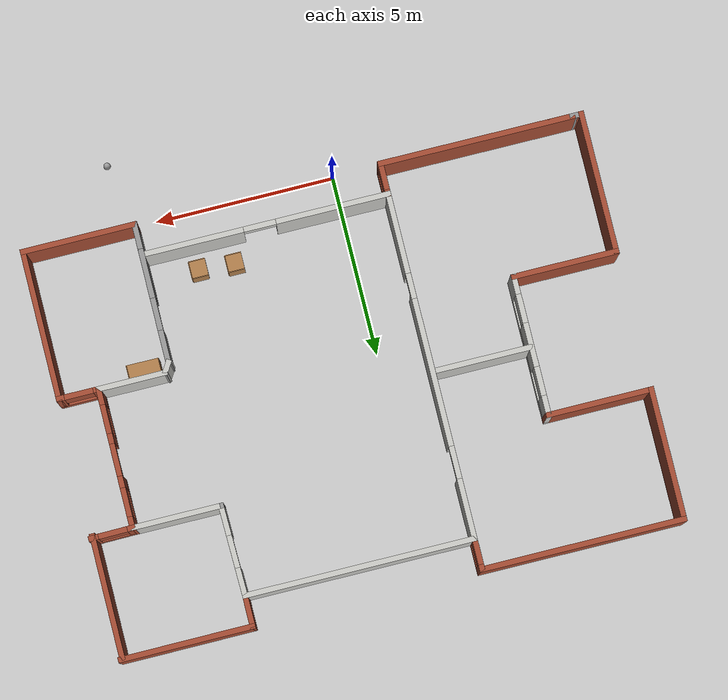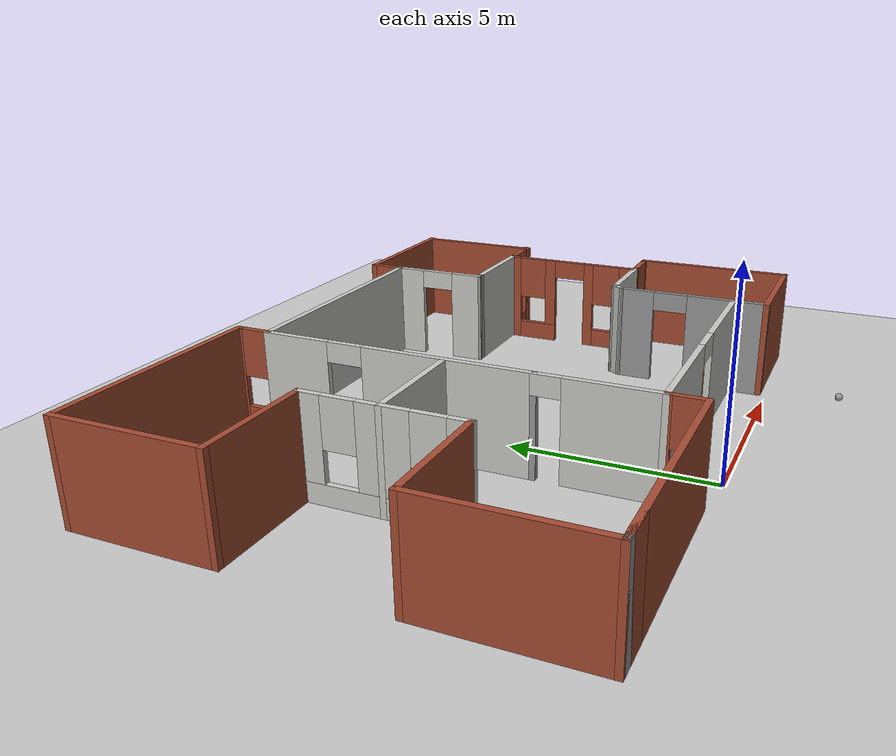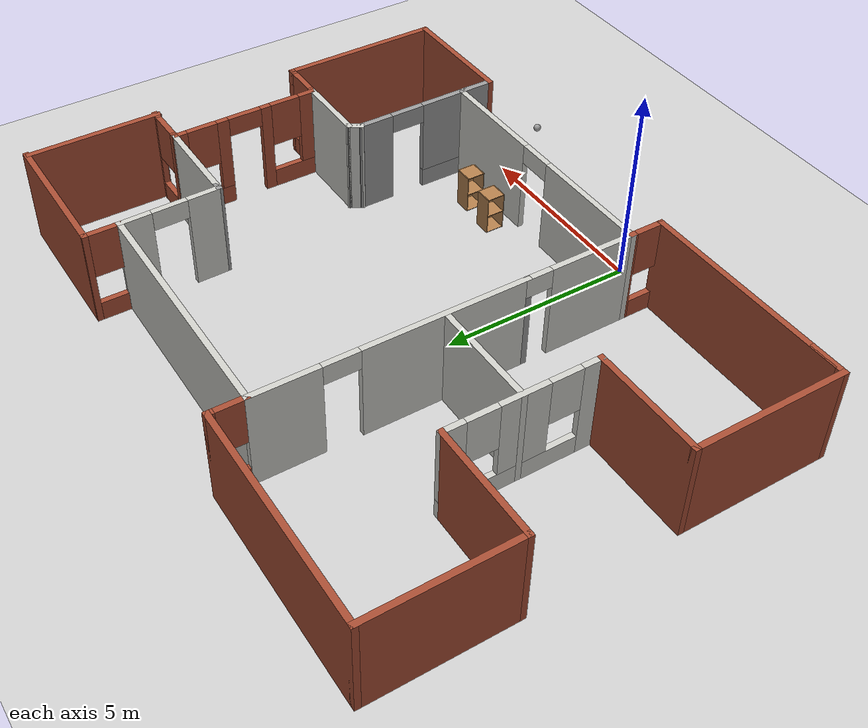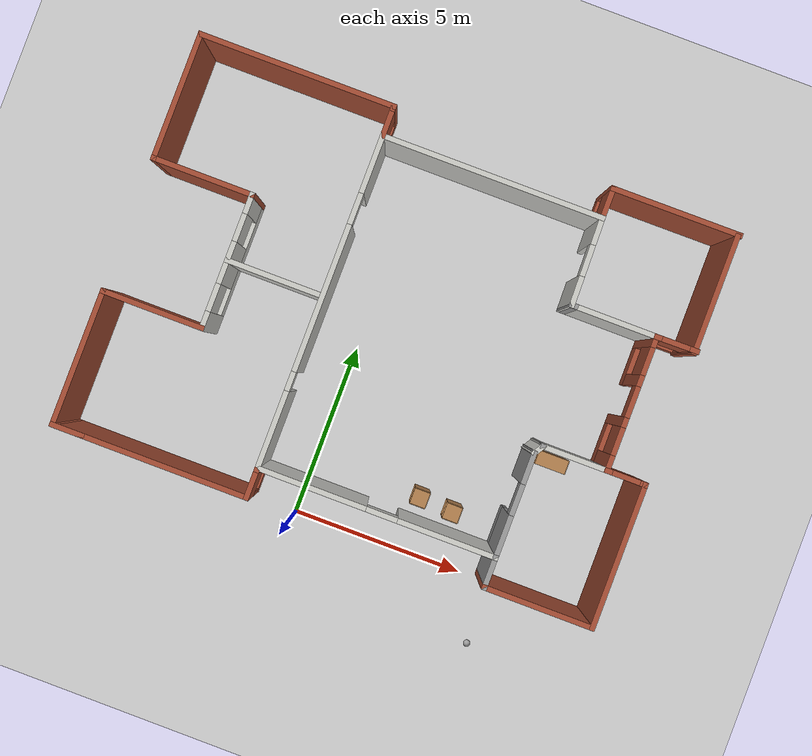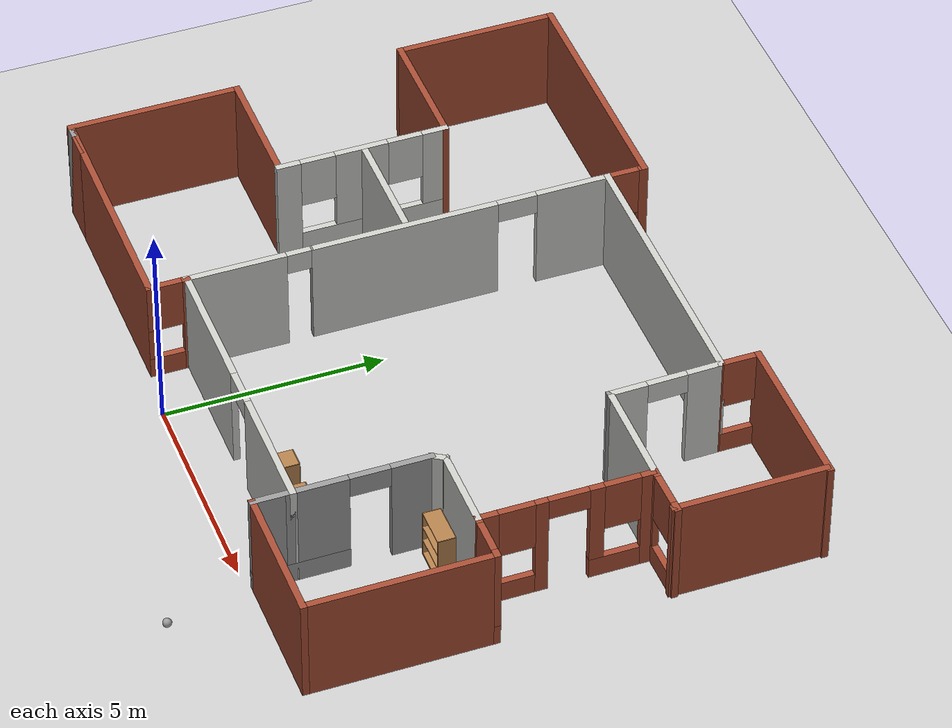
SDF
<sdf version="1.6">
 <world name="default">
  <model name="ground_plane">
   <static>1</static>
   <link name="link">
    <collision name="collision">
     <geometry><plane><normal>0 0 1</normal><size>100 100</size></plane></geometry>
     <surface><friction><ode><mu>100</mu><mu2>50</mu2></ode></friction></surface>
    </collision>
    <visual name="visual">
     <cast_shadows>0</cast_shadows>
     <geometry><plane><normal>0 0 1</normal><size>100 100</size></plane></geometry>
     <material>
      <script><uri>file://media/materials/scripts/gazebo.material</uri><name>Gazebo/Grey</name></script>
     </material>
    </visual>
   </link>
  </model>
  <model name="building_project3">
   <pose>0.90611 5.85511 0 0 -0 0</pose>
   <link name="Wall_0">
    <collision name="Wall_0_Collision">
     <geometry><box><size>4 0.15 2.5</size></box></geometry>
     <pose>0 0 1.25 0 -0 0</pose>
    </collision>
    <visual name="Wall_0_Visual">
     <pose>0 0 1.25 0 -0 0</pose>
     <geometry><box><size>4 0.15 2.5</size></box></geometry>
     <material>
      <script><uri>file://media/materials/scripts/gazebo.material</uri><name>Gazebo/Bricks</name></script>
      <ambient>1 1 1 1</ambient>
     </material>
    </visual>
    <pose>-7.79821 -3.73251 0 0 -0 1.5708</pose>
   </link>
   <link name="Wall_1">
    <collision name="Wall_1_Collision">
     <geometry><box><size>3 0.15 2.5</size></box></geometry>
     <pose>0 0 1.25 0 -0 0</pose>
    </collision>
    <visual name="Wall_1_Visual">
     <pose>0 0 1.25 0 -0 0</pose>
     <geometry><box><size>3 0.15 2.5</size></box></geometry>
     <material>
      <script><uri>file://media/materials/scripts/gazebo.material</uri><name>Gazebo/Bricks</name></script>
      <ambient>1 1 1 1</ambient>
     </material>
    </visual>
    <pose>-6.37322 -1.80751 0 0 -0 0</pose>
   </link>
   <link name="Wall_10">
    <collision name="Wall_10_Collision">
     <geometry><box><size>3.5 0.15 2.5</size></box></geometry>
     <pose>0 0 1.25 0 -0 0</pose>
    </collision>
    <visual name="Wall_10_Visual">
     <pose>0 0 1.25 0 -0 0</pose>
     <geometry><box><size>3.5 0.15 2.5</size></box></geometry>
     <material>
      <script><uri>file://media/materials/scripts/gazebo.material</uri><name>Gazebo/Bricks</name></script>
      <ambient>1 1 1 1</ambient>
     </material>
    </visual>
    <pose>7.75073 3.93568 0 0 0 -1.5708</pose>
   </link>
   <link name="Wall_11">
    <pose>7.22452 2.29985 0 0 0 -3.12875</pose>
    <visual name="Wall_11_Visual_0">
     <pose>-0.512497 0 1.25 0 -0 0</pose>
     <geometry><box><size>0.270574 0.15 2.5</size></box></geometry>
     <material>
      <script><uri>file://media/materials/scripts/gazebo.material</uri><name>Gazebo/Bricks</name></script>
      <ambient>1 1 1 1</ambient>
     </material>
    </visual>
    <collision name="Wall_11_Collision_0">
     <geometry><box><size>0.270574 0.15 2.5</size></box></geometry>
     <pose>-0.512497 0 1.25 0 -0 0</pose>
    </collision>
    <visual name="Wall_11_Visual_1">
     <pose>0.135287 0 0.25 0 -0 0</pose>
     <geometry><box><size>1.02499 0.15 0.5</size></box></geometry>
     <material>
      <script><uri>file://media/materials/scripts/gazebo.material</uri><name>Gazebo/Bricks</name></script>
      <ambient>1 1 1 1</ambient>
     </material>
    </visual>
    <collision name="Wall_11_Collision_1">
     <geometry><box><size>1.02499 0.15 0.5</size></box></geometry>
     <pose>0.135287 0 0.25 0 -0 0</pose>
    </collision>
    <visual name="Wall_11_Visual_2">
     <pose>0.535287 0 1.5 0 -0 0</pose>
     <geometry><box><size>0.224994 0.15 2</size></box></geometry>
     <material>
      <script><uri>file://media/materials/scripts/gazebo.material</uri><name>Gazebo/Bricks</name></script>
      <ambient>1 1 1 1</ambient>
     </material>
    </visual>
    <collision name="Wall_11_Collision_2">
     <geometry><box><size>0.224994 0.15 2</size></box></geometry>
     <pose>0.535287 0 1.5 0 -0 0</pose>
    </collision>
    <visual name="Wall_11_Visual_3">
     <pose>0.02279 0 1.9 0 -0 0</pose>
     <geometry><box><size>0.8 0.15 1.2</size></box></geometry>
     <material>
      <script><uri>file://media/materials/scripts/gazebo.material</uri><name>Gazebo/Bricks</name></script>
      <ambient>1 1 1 1</ambient>
     </material>
    </visual>
    <collision name="Wall_11_Collision_3">
     <geometry><box><size>0.8 0.15 1.2</size></box></geometry>
     <pose>0.02279 0 1.9 0 -0 0</pose>
    </collision>
   </link>
   <link name="Wall_12">
    <pose>6.65179 0.367493 0 0 0 -1.5708</pose>
    <visual name="Wall_12_Visual_0">
     <pose>-1.80898 0 1.25 0 -0 0</pose>
     <geometry><box><size>0.382047 0.15 2.5</size></box></geometry>
     <material>
      <script><uri>file://media/materials/scripts/gazebo.material</uri><name>Gazebo/Bricks</name></script>
      <ambient>1 1 1 1</ambient>
     </material>
    </visual>
    <collision name="Wall_12_Collision_0">
     <geometry><box><size>0.382047 0.15 2.5</size></box></geometry>
     <pose>-1.80898 0 1.25 0 -0 0</pose>
    </collision>
    <visual name="Wall_12_Visual_1">
     <pose>0.546637 0 1.25 0 -0 0</pose>
     <geometry><box><size>0.282756 0.15 2.5</size></box></geometry>
     <material>
      <script><uri>file://media/materials/scripts/gazebo.material</uri><name>Gazebo/Bricks</name></script>
      <ambient>1 1 1 1</ambient>
     </material>
    </visual>
    <collision name="Wall_12_Collision_1">
     <geometry><box><size>0.282756 0.15 2.5</size></box></geometry>
     <pose>0.546637 0 1.25 0 -0 0</pose>
    </collision>
    <visual name="Wall_12_Visual_2">
     <pose>-1.05635 0 0.25 0 -0 0</pose>
     <geometry><box><size>1.12321 0.15 0.5</size></box></geometry>
     <material>
      <script><uri>file://media/materials/scripts/gazebo.material</uri><name>Gazebo/Bricks</name></script>
      <ambient>1 1 1 1</ambient>
     </material>
    </visual>
    <collision name="Wall_12_Collision_2">
     <geometry><box><size>1.12321 0.15 0.5</size></box></geometry>
     <pose>-1.05635 0 0.25 0 -0 0</pose>
    </collision>
    <visual name="Wall_12_Visual_3">
     <pose>1.34401 0 0.25 0 -0 0</pose>
     <geometry><box><size>1.31198 0.15 0.5</size></box></geometry>
     <material>
      <script><uri>file://media/materials/scripts/gazebo.material</uri><name>Gazebo/Bricks</name></script>
      <ambient>1 1 1 1</ambient>
     </material>
    </visual>
    <collision name="Wall_12_Collision_3">
     <geometry><box><size>1.31198 0.15 0.5</size></box></geometry>
     <pose>1.34401 0 0.25 0 -0 0</pose>
    </collision>
    <visual name="Wall_12_Visual_4">
     <pose>-0.656347 0 1.5 0 -0 0</pose>
     <geometry><box><size>0.323212 0.15 2</size></box></geometry>
     <material>
      <script><uri>file://media/materials/scripts/gazebo.material</uri><name>Gazebo/Bricks</name></script>
      <ambient>1 1 1 1</ambient>
     </material>
    </visual>
    <collision name="Wall_12_Collision_4">
     <geometry><box><size>0.323212 0.15 2</size></box></geometry>
     <pose>-0.656347 0 1.5 0 -0 0</pose>
    </collision>
    <visual name="Wall_12_Visual_5">
     <pose>-0.656347 0 1.5 0 -0 0</pose>
     <geometry><box><size>0.323212 0.15 2</size></box></geometry>
     <material>
      <script><uri>file://media/materials/scripts/gazebo.material</uri><name>Gazebo/Bricks</name></script>
      <ambient>1 1 1 1</ambient>
     </material>
    </visual>
    <collision name="Wall_12_Collision_5">
     <geometry><box><size>0.323212 0.15 2</size></box></geometry>
     <pose>-0.656347 0 1.5 0 -0 0</pose>
    </collision>
    <visual name="Wall_12_Visual_6">
     <pose>1.74401 0 1.5 0 -0 0</pose>
     <geometry><box><size>0.511985 0.15 2</size></box></geometry>
     <material>
      <script><uri>file://media/materials/scripts/gazebo.material</uri><name>Gazebo/Bricks</name></script>
      <ambient>1 1 1 1</ambient>
     </material>
    </visual>
    <collision name="Wall_12_Collision_6">
     <geometry><box><size>0.511985 0.15 2</size></box></geometry>
     <pose>1.74401 0 1.5 0 -0 0</pose>
    </collision>
    <visual name="Wall_12_Visual_7">
     <pose>-1.21795 0 1.9 0 -0 0</pose>
     <geometry><box><size>0.8 0.15 1.2</size></box></geometry>
     <material>
      <script><uri>file://media/materials/scripts/gazebo.material</uri><name>Gazebo/Bricks</name></script>
      <ambient>1 1 1 1</ambient>
     </material>
    </visual>
    <collision name="Wall_12_Collision_7">
     <geometry><box><size>0.8 0.15 1.2</size></box></geometry>
     <pose>-1.21795 0 1.9 0 -0 0</pose>
    </collision>
    <visual name="Wall_12_Visual_8">
     <pose>1.08801 0 1.9 0 -0 0</pose>
     <geometry><box><size>0.8 0.15 1.2</size></box></geometry>
     <material>
      <script><uri>file://media/materials/scripts/gazebo.material</uri><name>Gazebo/Bricks</name></script>
      <ambient>1 1 1 1</ambient>
     </material>
    </visual>
    <collision name="Wall_12_Collision_8">
     <geometry><box><size>0.8 0.15 1.2</size></box></geometry>
     <pose>1.08801 0 1.9 0 -0 0</pose>
    </collision>
    <visual name="Wall_12_Visual_9">
     <pose>-0.044741 0 2.25 0 -0 0</pose>
     <geometry><box><size>0.9 0.15 0.5</size></box></geometry>
     <material>
      <script><uri>file://media/materials/scripts/gazebo.material</uri><name>Gazebo/Bricks</name></script>
      <ambient>1 1 1 1</ambient>
     </material>
    </visual>
    <collision name="Wall_12_Collision_9">
     <geometry><box><size>0.9 0.15 0.5</size></box></geometry>
     <pose>-0.044741 0 2.25 0 -0 0</pose>
    </collision>
    <visual name="Wall_12_Visual_10">
     <pose>-0.044741 0 2.25 0 -0 0</pose>
     <geometry><box><size>0.9 0.15 0.5</size></box></geometry>
     <material>
      <script><uri>file://media/materials/scripts/gazebo.material</uri><name>Gazebo/Bricks</name></script>
      <ambient>1 1 1 1</ambient>
     </material>
    </visual>
    <collision name="Wall_12_Collision_10">
     <geometry><box><size>0.9 0.15 0.5</size></box></geometry>
     <pose>-0.044741 0 2.25 0 -0 0</pose>
    </collision>
   </link>
   <link name="Wall_13">
    <pose>7.20179 -1.55751 0 0 -0 0</pose>
    <visual name="Wall_13_Visual_0">
     <pose>-0.511837 0 1.25 0 -0 0</pose>
     <geometry><box><size>0.226327 0.15 2.5</size></box></geometry>
     <material>
      <script><uri>file://media/materials/scripts/gazebo.material</uri><name>Gazebo/Bricks</name></script>
      <ambient>1 1 1 1</ambient>
     </material>
    </visual>
    <collision name="Wall_13_Collision_0">
     <geometry><box><size>0.226327 0.15 2.5</size></box></geometry>
     <pose>-0.511837 0 1.25 0 -0 0</pose>
    </collision>
    <visual name="Wall_13_Visual_1">
     <pose>0.113163 0 0.25 0 -0 0</pose>
     <geometry><box><size>1.02367 0.15 0.5</size></box></geometry>
     <material>
      <script><uri>file://media/materials/scripts/gazebo.material</uri><name>Gazebo/Bricks</name></script>
      <ambient>1 1 1 1</ambient>
     </material>
    </visual>
    <collision name="Wall_13_Collision_1">
     <geometry><box><size>1.02367 0.15 0.5</size></box></geometry>
     <pose>0.113163 0 0.25 0 -0 0</pose>
    </collision>
    <visual name="Wall_13_Visual_2">
     <pose>0.513163 0 1.5 0 -0 0</pose>
     <geometry><box><size>0.223673 0.15 2</size></box></geometry>
     <material>
      <script><uri>file://media/materials/scripts/gazebo.material</uri><name>Gazebo/Bricks</name></script>
      <ambient>1 1 1 1</ambient>
     </material>
    </visual>
    <collision name="Wall_13_Collision_2">
     <geometry><box><size>0.223673 0.15 2</size></box></geometry>
     <pose>0.513163 0 1.5 0 -0 0</pose>
    </collision>
    <visual name="Wall_13_Visual_3">
     <pose>0.001327 0 1.9 0 -0 0</pose>
     <geometry><box><size>0.8 0.15 1.2</size></box></geometry>
     <material>
      <script><uri>file://media/materials/scripts/gazebo.material</uri><name>Gazebo/Bricks</name></script>
      <ambient>1 1 1 1</ambient>
     </material>
    </visual>
    <collision name="Wall_13_Collision_3">
     <geometry><box><size>0.8 0.15 1.2</size></box></geometry>
     <pose>0.001327 0 1.9 0 -0 0</pose>
    </collision>
   </link>
   <link name="Wall_14">
    <collision name="Wall_14_Collision">
     <geometry><box><size>4.25 0.15 2.5</size></box></geometry>
     <pose>0 0 1.25 0 -0 0</pose>
    </collision>
    <visual name="Wall_14_Visual">
     <pose>0 0 1.25 0 -0 0</pose>
     <geometry><box><size>4.25 0.15 2.5</size></box></geometry>
     <material>
      <script><uri>file://media/materials/scripts/gazebo.material</uri><name>Gazebo/Bricks</name></script>
      <ambient>1 1 1 1</ambient>
     </material>
    </visual>
    <pose>7.75178 -3.60751 0 0 0 -1.5708</pose>
   </link>
   <link name="Wall_15">
    <collision name="Wall_15_Collision">
     <geometry><box><size>3.25 0.15 2.5</size></box></geometry>
     <pose>0 0 1.25 0 -0 0</pose>
    </collision>
    <visual name="Wall_15_Visual">
     <pose>0 0 1.25 0 -0 0</pose>
     <geometry><box><size>3.25 0.15 2.5</size></box></geometry>
     <material>
      <script><uri>file://media/materials/scripts/gazebo.material</uri><name>Gazebo/Bricks</name></script>
      <ambient>1 1 1 1</ambient>
     </material>
    </visual>
    <pose>6.20179 -5.65751 0 0 -0 3.14159</pose>
   </link>
   <link name="Wall_16">
    <collision name="Wall_16_Collision">
     <geometry><box><size>1 0.15 2.5</size></box></geometry>
     <pose>0 0 1.25 0 -0 0</pose>
    </collision>
    <visual name="Wall_16_Visual">
     <pose>0 0 1.25 0 -0 0</pose>
     <geometry><box><size>1 0.15 2.5</size></box></geometry>
     <material>
      <script><uri>file://media/materials/scripts/gazebo.material</uri><name>Gazebo/Grey</name></script>
      <ambient>1 1 1 1</ambient>
     </material>
    </visual>
    <pose>4.65179 -5.23251 0 0 -0 1.5708</pose>
   </link>
   <link name="Wall_17">
    <pose>1.22679 -4.80751 0 0 -0 3.14159</pose>
    <visual name="Wall_17_Visual_0">
     <pose>-2.05036 0 1.25 0 -0 0</pose>
     <geometry><box><size>2.89928 0.15 2.5</size></box></geometry>
     <material>
      <script><uri>file://media/materials/scripts/gazebo.material</uri><name>Gazebo/CeilingTiled</name></script>
      <ambient>1 1 1 1</ambient>
     </material>
    </visual>
    <collision name="Wall_17_Collision_0">
     <geometry><box><size>2.89928 0.15 2.5</size></box></geometry>
     <pose>-2.05036 0 1.25 0 -0 0</pose>
    </collision>
    <visual name="Wall_17_Visual_1">
     <pose>1.89964 0 1.25 0 -0 0</pose>
     <geometry><box><size>3.20072 0.15 2.5</size></box></geometry>
     <material>
      <script><uri>file://media/materials/scripts/gazebo.material</uri><name>Gazebo/CeilingTiled</name></script>
      <ambient>1 1 1 1</ambient>
     </material>
    </visual>
    <collision name="Wall_17_Collision_1">
     <geometry><box><size>3.20072 0.15 2.5</size></box></geometry>
     <pose>1.89964 0 1.25 0 -0 0</pose>
    </collision>
    <visual name="Wall_17_Visual_2">
     <pose>-0.150724 0 2.25 0 -0 0</pose>
     <geometry><box><size>0.9 0.15 0.5</size></box></geometry>
     <material>
      <script><uri>file://media/materials/scripts/gazebo.material</uri><name>Gazebo/CeilingTiled</name></script>
      <ambient>1 1 1 1</ambient>
     </material>
    </visual>
    <collision name="Wall_17_Collision_2">
     <geometry><box><size>0.9 0.15 0.5</size></box></geometry>
     <pose>-0.150724 0 2.25 0 -0 0</pose>
    </collision>
   </link>
   <link name="Wall_18">
    <pose>-2.19821 -5.23251 0 0 0 -1.5708</pose>
    <visual name="Wall_18_Visual_0">
     <pose>-0.400024 0 1.25 0 -0 0</pose>
     <geometry><box><size>0.199951 0.15 2.5</size></box></geometry>
     <material>
      <script><uri>file://media/materials/scripts/gazebo.material</uri><name>Gazebo/Bricks</name></script>
      <ambient>1 1 1 1</ambient>
     </material>
    </visual>
    <collision name="Wall_18_Collision_0">
     <geometry><box><size>0.199951 0.15 2.5</size></box></geometry>
     <pose>-0.400024 0 1.25 0 -0 0</pose>
    </collision>
    <visual name="Wall_18_Visual_1">
     <pose>0.099976 0 0.25 0 -0 0</pose>
     <geometry><box><size>0.800049 0.15 0.5</size></box></geometry>
     <material>
      <script><uri>file://media/materials/scripts/gazebo.material</uri><name>Gazebo/Bricks</name></script>
      <ambient>1 1 1 1</ambient>
     </material>
    </visual>
    <collision name="Wall_18_Collision_1">
     <geometry><box><size>0.800049 0.15 0.5</size></box></geometry>
     <pose>0.099976 0 0.25 0 -0 0</pose>
    </collision>
    <visual name="Wall_18_Visual_2">
     <pose>0.499976 0 1.5 0 -0 0</pose>
     <geometry><box><size>4.9e-05 0.15 2</size></box></geometry>
     <material>
      <script><uri>file://media/materials/scripts/gazebo.material</uri><name>Gazebo/Bricks</name></script>
      <ambient>1 1 1 1</ambient>
     </material>
    </visual>
    <collision name="Wall_18_Collision_2">
     <geometry><box><size>4.9e-05 0.15 2</size></box></geometry>
     <pose>0.499976 0 1.5 0 -0 0</pose>
    </collision>
    <visual name="Wall_18_Visual_3">
     <pose>0.099951 0 1.9 0 -0 0</pose>
     <geometry><box><size>0.8 0.15 1.2</size></box></geometry>
     <material>
      <script><uri>file://media/materials/scripts/gazebo.material</uri><name>Gazebo/Bricks</name></script>
      <ambient>1 1 1 1</ambient>
     </material>
    </visual>
    <collision name="Wall_18_Collision_3">
     <geometry><box><size>0.8 0.15 1.2</size></box></geometry>
     <pose>0.099951 0 1.9 0 -0 0</pose>
    </collision>
   </link>
   <link name="Wall_19">
    <collision name="Wall_19_Collision">
     <geometry><box><size>5.5 0.15 2.5</size></box></geometry>
     <pose>0 0 1.25 0 -0 0</pose>
    </collision>
    <visual name="Wall_19_Visual">
     <pose>0 0 1.25 0 -0 0</pose>
     <geometry><box><size>5.5 0.15 2.5</size></box></geometry>
     <material>
      <script><uri>file://media/materials/scripts/gazebo.material</uri><name>Gazebo/Bricks</name></script>
      <ambient>1 1 1 1</ambient>
     </material>
    </visual>
    <pose>-4.87322 -5.65751 0 0 -0 3.14159</pose>
   </link>
   <link name="Wall_2">
    <pose>-4.94822 0.117493 0 0 -0 1.5708</pose>
    <visual name="Wall_2_Visual_0">
     <pose>-1.72015 0 1.25 0 -0 0</pose>
     <geometry><box><size>0.559707 0.15 2.5</size></box></geometry>
     <material>
      <script><uri>file://media/materials/scripts/gazebo.material</uri><name>Gazebo/CeilingTiled</name></script>
      <ambient>1 1 1 1</ambient>
     </material>
    </visual>
    <collision name="Wall_2_Collision_0">
     <geometry><box><size>0.559707 0.15 2.5</size></box></geometry>
     <pose>-1.72015 0 1.25 0 -0 0</pose>
    </collision>
    <visual name="Wall_2_Visual_1">
     <pose>0.279853 0 0.25 0 -0 0</pose>
     <geometry><box><size>3.44029 0.15 0.5</size></box></geometry>
     <material>
      <script><uri>file://media/materials/scripts/gazebo.material</uri><name>Gazebo/CeilingTiled</name></script>
      <ambient>1 1 1 1</ambient>
     </material>
    </visual>
    <collision name="Wall_2_Collision_1">
     <geometry><box><size>3.44029 0.15 0.5</size></box></geometry>
     <pose>0.279853 0 0.25 0 -0 0</pose>
    </collision>
    <visual name="Wall_2_Visual_2">
     <pose>-0.028904 0 1.5 0 -0 0</pose>
     <geometry><box><size>1.22278 0.15 2</size></box></geometry>
     <material>
      <script><uri>file://media/materials/scripts/gazebo.material</uri><name>Gazebo/CeilingTiled</name></script>
      <ambient>1 1 1 1</ambient>
     </material>
    </visual>
    <collision name="Wall_2_Collision_2">
     <geometry><box><size>1.22278 0.15 2</size></box></geometry>
     <pose>-0.028904 0 1.5 0 -0 0</pose>
    </collision>
    <visual name="Wall_2_Visual_3">
     <pose>1.69124 0 1.5 0 -0 0</pose>
     <geometry><box><size>0.617514 0.15 2</size></box></geometry>
     <material>
      <script><uri>file://media/materials/scripts/gazebo.material</uri><name>Gazebo/CeilingTiled</name></script>
      <ambient>1 1 1 1</ambient>
     </material>
    </visual>
    <collision name="Wall_2_Collision_3">
     <geometry><box><size>0.617514 0.15 2</size></box></geometry>
     <pose>1.69124 0 1.5 0 -0 0</pose>
    </collision>
    <visual name="Wall_2_Visual_4">
     <pose>-1.04029 0 1.9 0 -0 0</pose>
     <geometry><box><size>0.8 0.15 1.2</size></box></geometry>
     <material>
      <script><uri>file://media/materials/scripts/gazebo.material</uri><name>Gazebo/CeilingTiled</name></script>
      <ambient>1 1 1 1</ambient>
     </material>
    </visual>
    <collision name="Wall_2_Collision_4">
     <geometry><box><size>0.8 0.15 1.2</size></box></geometry>
     <pose>-1.04029 0 1.9 0 -0 0</pose>
    </collision>
    <visual name="Wall_2_Visual_5">
     <pose>0.982486 0 1.9 0 -0 0</pose>
     <geometry><box><size>0.8 0.15 1.2</size></box></geometry>
     <material>
      <script><uri>file://media/materials/scripts/gazebo.material</uri><name>Gazebo/CeilingTiled</name></script>
      <ambient>1 1 1 1</ambient>
     </material>
    </visual>
    <collision name="Wall_2_Collision_5">
     <geometry><box><size>0.8 0.15 1.2</size></box></geometry>
     <pose>0.982486 0 1.9 0 -0 0</pose>
    </collision>
   </link>
   <link name="Wall_20">
    <collision name="Wall_20_Collision">
     <geometry><box><size>0.4 0.15 2.5</size></box></geometry>
     <pose>0 0 1.25 0 -0 0</pose>
    </collision>
    <visual name="Wall_20_Visual">
     <pose>0 0 1.25 0 -0 0</pose>
     <geometry><box><size>0.4 0.15 2.5</size></box></geometry>
     <material>
      <script><uri>file://media/materials/scripts/gazebo.material</uri><name>Gazebo/Grey</name></script>
      <ambient>1 1 1 1</ambient>
     </material>
    </visual>
    <pose>-7.67321 -5.65751 0 0 0 -3.14159</pose>
   </link>
   <link name="Wall_21">
    <collision name="Wall_21_Collision">
     <geometry><box><size>1 0.15 2.5</size></box></geometry>
     <pose>0 0 1.25 0 -0 0</pose>
    </collision>
    <visual name="Wall_21_Visual">
     <pose>0 0 1.25 0 -0 0</pose>
     <geometry><box><size>1 0.15 2.5</size></box></geometry>
     <material>
      <script><uri>file://media/materials/scripts/gazebo.material</uri><name>Gazebo/Bricks</name></script>
      <ambient>1 1 1 1</ambient>
     </material>
    </visual>
    <pose>-7.37322 -5.65751 0 0 -0 0</pose>
   </link>
   <link name="Wall_23">
    <pose>-2.19821 -3.38251 0 0 -0 1.5708</pose>
    <visual name="Wall_23_Visual_0">
     <pose>-0.35198 0 1.25 0 -0 0</pose>
     <geometry><box><size>2.29604 0.15 2.5</size></box></geometry>
     <material>
      <script><uri>file://media/materials/scripts/gazebo.material</uri><name>Gazebo/CeilingTiled</name></script>
      <ambient>1 1 1 1</ambient>
     </material>
    </visual>
    <collision name="Wall_23_Collision_0">
     <geometry><box><size>2.29604 0.15 2.5</size></box></geometry>
     <pose>-0.35198 0 1.25 0 -0 0</pose>
    </collision>
    <visual name="Wall_23_Visual_1">
     <pose>1.14802 0 2.25 0 -0 0</pose>
     <geometry><box><size>0.70396 0.15 0.5</size></box></geometry>
     <material>
      <script><uri>file://media/materials/scripts/gazebo.material</uri><name>Gazebo/CeilingTiled</name></script>
      <ambient>1 1 1 1</ambient>
     </material>
    </visual>
    <collision name="Wall_23_Collision_1">
     <geometry><box><size>0.70396 0.15 0.5</size></box></geometry>
     <pose>1.14802 0 2.25 0 -0 0</pose>
    </collision>
   </link>
   <link name="Wall_24">
    <collision name="Wall_24_Collision">
     <geometry><box><size>0.15 0.15 2.5</size></box></geometry>
     <pose>0 0 1.25 0 -0 0</pose>
    </collision>
    <visual name="Wall_24_Visual">
     <pose>0 0 1.25 0 -0 0</pose>
     <geometry><box><size>0.15 0.15 2.5</size></box></geometry>
     <material>
      <script><uri>file://media/materials/scripts/gazebo.material</uri><name>Gazebo/Grey</name></script>
      <ambient>1 1 1 1</ambient>
     </material>
    </visual>
    <pose>-2.19821 -1.95751 0 0 -0 0</pose>
   </link>
   <link name="Wall_25">
    <pose>-2.19821 1.41749 0 0 -0 1.5708</pose>
    <visual name="Wall_25_Visual_0">
     <pose>-1.31987 0 1.25 0 -0 0</pose>
     <geometry><box><size>4.26025 0.15 2.5</size></box></geometry>
     <material>
      <script><uri>file://media/materials/scripts/gazebo.material</uri><name>Gazebo/CeilingTiled</name></script>
      <ambient>1 1 1 1</ambient>
     </material>
    </visual>
    <collision name="Wall_25_Collision_0">
     <geometry><box><size>4.26025 0.15 2.5</size></box></geometry>
     <pose>-1.31987 0 1.25 0 -0 0</pose>
    </collision>
    <visual name="Wall_25_Visual_1">
     <pose>2.58013 0 1.25 0 -0 0</pose>
     <geometry><box><size>1.73975 0.15 2.5</size></box></geometry>
     <material>
      <script><uri>file://media/materials/scripts/gazebo.material</uri><name>Gazebo/CeilingTiled</name></script>
      <ambient>1 1 1 1</ambient>
     </material>
    </visual>
    <collision name="Wall_25_Collision_1">
     <geometry><box><size>1.73975 0.15 2.5</size></box></geometry>
     <pose>2.58013 0 1.25 0 -0 0</pose>
    </collision>
    <visual name="Wall_25_Visual_2">
     <pose>1.26025 0 2.25 0 -0 0</pose>
     <geometry><box><size>0.9 0.15 0.5</size></box></geometry>
     <material>
      <script><uri>file://media/materials/scripts/gazebo.material</uri><name>Gazebo/CeilingTiled</name></script>
      <ambient>1 1 1 1</ambient>
     </material>
    </visual>
    <collision name="Wall_25_Collision_2">
     <geometry><box><size>0.9 0.15 0.5</size></box></geometry>
     <pose>1.26025 0 2.25 0 -0 0</pose>
    </collision>
   </link>
   <link name="Wall_27">
    <collision name="Wall_27_Collision">
     <geometry><box><size>2.75 0.15 2.5</size></box></geometry>
     <pose>0 0 1.25 0 -0 0</pose>
    </collision>
    <visual name="Wall_27_Visual">
     <pose>0 0 1.25 0 -0 0</pose>
     <geometry><box><size>2.75 0.15 2.5</size></box></geometry>
     <material>
      <script><uri>file://media/materials/scripts/gazebo.material</uri><name>Gazebo/CeilingTiled</name></script>
      <ambient>1 1 1 1</ambient>
     </material>
    </visual>
    <pose>-3.64864 0.1508 0 0 -0 0</pose>
   </link>
   <link name="Wall_29">
    <collision name="Wall_29_Collision">
     <geometry><box><size>2.5 0.15 2.5</size></box></geometry>
     <pose>0 0 1.25 0 -0 0</pose>
    </collision>
    <visual name="Wall_29_Visual">
     <pose>0 0 1.25 0 -0 0</pose>
     <geometry><box><size>2.5 0.15 2.5</size></box></geometry>
     <material>
      <script><uri>file://media/materials/scripts/gazebo.material</uri><name>Gazebo/CeilingTiled</name></script>
      <ambient>1 1 1 1</ambient>
     </material>
    </visual>
    <pose>5.47678 2.29249 0 0 -0 3.14159</pose>
   </link>
   <link name="Wall_3">
    <collision name="Wall_3_Collision">
     <geometry><box><size>3 0.15 2.5</size></box></geometry>
     <pose>0 0 1.25 0 -0 0</pose>
    </collision>
    <visual name="Wall_3_Visual">
     <pose>0 0 1.25 0 -0 0</pose>
     <geometry><box><size>3 0.15 2.5</size></box></geometry>
     <material>
      <script><uri>file://media/materials/scripts/gazebo.material</uri><name>Gazebo/Bricks</name></script>
      <ambient>1 1 1 1</ambient>
     </material>
    </visual>
    <pose>-6.37322 2.04249 0 0 -0 3.14159</pose>
   </link>
   <link name="Wall_30">
    <collision name="Wall_30_Collision">
     <geometry><box><size>0.25 0.15 2.5</size></box></geometry>
     <pose>0 0 1.25 0 -0 0</pose>
    </collision>
    <visual name="Wall_30_Visual">
     <pose>0 0 1.25 0 -0 0</pose>
     <geometry><box><size>0.25 0.15 2.5</size></box></geometry>
     <material>
      <script><uri>file://media/materials/scripts/gazebo.material</uri><name>Gazebo/Grey</name></script>
      <ambient>1 1 1 1</ambient>
     </material>
    </visual>
    <pose>4.25178 2.29249 0 0 -0 3.14159</pose>
   </link>
   <link name="Wall_31">
    <pose>4.17678 3.54249 0 0 -0 1.59079</pose>
    <visual name="Wall_31_Visual_0">
     <pose>-0.874507 0 1.25 0 -0 0</pose>
     <geometry><box><size>0.901486 0.15 2.5</size></box></geometry>
     <material>
      <script><uri>file://media/materials/scripts/gazebo.material</uri><name>Gazebo/CeilingTiled</name></script>
      <ambient>1 1 1 1</ambient>
     </material>
    </visual>
    <collision name="Wall_31_Collision_0">
     <geometry><box><size>0.901486 0.15 2.5</size></box></geometry>
     <pose>-0.874507 0 1.25 0 -0 0</pose>
    </collision>
    <visual name="Wall_31_Visual_1">
     <pose>0.900743 0 1.25 0 -0 0</pose>
     <geometry><box><size>0.849014 0.15 2.5</size></box></geometry>
     <material>
      <script><uri>file://media/materials/scripts/gazebo.material</uri><name>Gazebo/CeilingTiled</name></script>
      <ambient>1 1 1 1</ambient>
     </material>
    </visual>
    <collision name="Wall_31_Collision_1">
     <geometry><box><size>0.849014 0.15 2.5</size></box></geometry>
     <pose>0.900743 0 1.25 0 -0 0</pose>
    </collision>
    <visual name="Wall_31_Visual_2">
     <pose>0.026236 0 2.25 0 -0 0</pose>
     <geometry><box><size>0.9 0.15 0.5</size></box></geometry>
     <material>
      <script><uri>file://media/materials/scripts/gazebo.material</uri><name>Gazebo/CeilingTiled</name></script>
      <ambient>1 1 1 1</ambient>
     </material>
    </visual>
    <collision name="Wall_31_Collision_2">
     <geometry><box><size>0.9 0.15 0.5</size></box></geometry>
     <pose>0.026236 0 2.25 0 -0 0</pose>
    </collision>
   </link>
   <link name="Wall_33">
    <pose>4.65179 -3.73251 0 0 -0 1.5708</pose>
    <visual name="Wall_33_Visual_0">
     <pose>-0.932675 0 0.25 0 -0 0</pose>
     <geometry><box><size>2.13465 0.15 0.5</size></box></geometry>
     <material>
      <script><uri>file://media/materials/scripts/gazebo.material</uri><name>Gazebo/Grey</name></script>
      <ambient>1 1 1 1</ambient>
     </material>
    </visual>
    <collision name="Wall_33_Collision_0">
     <geometry><box><size>2.13465 0.15 0.5</size></box></geometry>
     <pose>-0.932675 0 0.25 0 -0 0</pose>
    </collision>
    <visual name="Wall_33_Visual_1">
     <pose>1.51733 0 1.25 0 -0 0</pose>
     <geometry><box><size>0.96535 0.15 2.5</size></box></geometry>
     <material>
      <script><uri>file://media/materials/scripts/gazebo.material</uri><name>Gazebo/Grey</name></script>
      <ambient>1 1 1 1</ambient>
     </material>
    </visual>
    <collision name="Wall_33_Collision_1">
     <geometry><box><size>0.96535 0.15 2.5</size></box></geometry>
     <pose>1.51733 0 1.25 0 -0 0</pose>
    </collision>
    <visual name="Wall_33_Visual_2">
     <pose>-0.552878 0 1.5 0 -0 0</pose>
     <geometry><box><size>1.37506 0.15 2</size></box></geometry>
     <material>
      <script><uri>file://media/materials/scripts/gazebo.material</uri><name>Gazebo/Grey</name></script>
      <ambient>1 1 1 1</ambient>
     </material>
    </visual>
    <collision name="Wall_33_Collision_2">
     <geometry><box><size>1.37506 0.15 2</size></box></geometry>
     <pose>-0.552878 0 1.5 0 -0 0</pose>
    </collision>
    <visual name="Wall_33_Visual_3">
     <pose>0.58465 0 2.25 0 -0 0</pose>
     <geometry><box><size>0.9 0.15 0.5</size></box></geometry>
     <material>
      <script><uri>file://media/materials/scripts/gazebo.material</uri><name>Gazebo/Grey</name></script>
      <ambient>1 1 1 1</ambient>
     </material>
    </visual>
    <collision name="Wall_33_Collision_3">
     <geometry><box><size>0.9 0.15 0.5</size></box></geometry>
     <pose>0.58465 0 2.25 0 -0 0</pose>
    </collision>
   </link>
   <link name="Wall_36">
    <collision name="Wall_36_Collision">
     <geometry><box><size>2 0.15 2.5</size></box></geometry>
     <pose>0 0 1.25 0 -0 0</pose>
    </collision>
    <visual name="Wall_36_Visual">
     <pose>0 0 1.25 0 -0 0</pose>
     <geometry><box><size>2 0.15 2.5</size></box></geometry>
     <material>
      <script><uri>file://media/materials/scripts/gazebo.material</uri><name>Gazebo/CeilingTiled</name></script>
      <ambient>1 1 1 1</ambient>
     </material>
    </visual>
    <pose>5.72678 -1.55751 0 0 -0 3.14159</pose>
   </link>
   <link name="Wall_37">
    <collision name="Wall_37_Collision">
     <geometry><box><size>0.15 0.15 2.5</size></box></geometry>
     <pose>0 0 1.25 0 -0 0</pose>
    </collision>
    <visual name="Wall_37_Visual">
     <pose>0 0 1.25 0 -0 0</pose>
     <geometry><box><size>0.15 0.15 2.5</size></box></geometry>
     <material>
      <script><uri>file://media/materials/scripts/gazebo.material</uri><name>Gazebo/Grey</name></script>
      <ambient>1 1 1 1</ambient>
     </material>
    </visual>
    <pose>4.80178 -1.55751 0 0 -0 0</pose>
   </link>
   <link name="Wall_38">
    <collision name="Wall_38_Collision">
     <geometry><box><size>0.441548 0.15 2.5</size></box></geometry>
     <pose>0 0 1.25 0 -0 0</pose>
    </collision>
    <visual name="Wall_38_Visual">
     <pose>0 0 1.25 0 -0 0</pose>
     <geometry><box><size>0.441548 0.15 2.5</size></box></geometry>
     <material>
      <script><uri>file://media/materials/scripts/gazebo.material</uri><name>Gazebo/CeilingTiled</name></script>
      <ambient>1 1 1 1</ambient>
     </material>
    </visual>
    <pose>4.72678 -1.68251 0 0 0 -2.11122</pose>
   </link>
   <link name="Wall_4">
    <collision name="Wall_4_Collision">
     <geometry><box><size>3.75 0.15 2.5</size></box></geometry>
     <pose>0 0 1.25 0 -0 0</pose>
    </collision>
    <visual name="Wall_4_Visual">
     <pose>0 0 1.25 0 -0 0</pose>
     <geometry><box><size>3.75 0.15 2.5</size></box></geometry>
     <material>
      <script><uri>file://media/materials/scripts/gazebo.material</uri><name>Gazebo/Bricks</name></script>
      <ambient>1 1 1 1</ambient>
     </material>
    </visual>
    <pose>-7.79821 3.84249 0 0 -0 1.5708</pose>
   </link>
   <link name="Wall_5">
    <collision name="Wall_5_Collision">
     <geometry><box><size>5.75 0.15 2.5</size></box></geometry>
     <pose>0 0 1.25 0 -0 0</pose>
    </collision>
    <visual name="Wall_5_Visual">
     <pose>0 0 1.25 0 -0 0</pose>
     <geometry><box><size>5.75 0.15 2.5</size></box></geometry>
     <material>
      <script><uri>file://media/materials/scripts/gazebo.material</uri><name>Gazebo/Bricks</name></script>
      <ambient>1 1 1 1</ambient>
     </material>
    </visual>
    <pose>-4.99822 5.64249 0 0 -0 0</pose>
   </link>
   <link name="Wall_6">
    <pose>-2.19821 5.21749 0 0 0 -1.5708</pose>
    <visual name="Wall_6_Visual_0">
     <pose>-0.393794 0 1.25 0 -0 0</pose>
     <geometry><box><size>0.212412 0.15 2.5</size></box></geometry>
     <material>
      <script><uri>file://media/materials/scripts/gazebo.material</uri><name>Gazebo/Bricks</name></script>
      <ambient>1 1 1 1</ambient>
     </material>
    </visual>
    <collision name="Wall_6_Collision_0">
     <geometry><box><size>0.212412 0.15 2.5</size></box></geometry>
     <pose>-0.393794 0 1.25 0 -0 0</pose>
    </collision>
    <visual name="Wall_6_Visual_1">
     <pose>0.106206 0 0.25 0 -0 0</pose>
     <geometry><box><size>0.787588 0.15 0.5</size></box></geometry>
     <material>
      <script><uri>file://media/materials/scripts/gazebo.material</uri><name>Gazebo/Bricks</name></script>
      <ambient>1 1 1 1</ambient>
     </material>
    </visual>
    <collision name="Wall_6_Collision_1">
     <geometry><box><size>0.787588 0.15 0.5</size></box></geometry>
     <pose>0.106206 0 0.25 0 -0 0</pose>
    </collision>
    <visual name="Wall_6_Visual_2">
     <pose>0.106206 0 1.9 0 -0 0</pose>
     <geometry><box><size>0.787588 0.15 1.2</size></box></geometry>
     <material>
      <script><uri>file://media/materials/scripts/gazebo.material</uri><name>Gazebo/Bricks</name></script>
      <ambient>1 1 1 1</ambient>
     </material>
    </visual>
    <collision name="Wall_6_Collision_2">
     <geometry><box><size>0.787588 0.15 1.2</size></box></geometry>
     <pose>0.106206 0 1.9 0 -0 0</pose>
    </collision>
   </link>
   <link name="Wall_7">
    <collision name="Wall_7_Collision">
     <geometry><box><size>6.5 0.15 2.5</size></box></geometry>
     <pose>0 0 1.25 0 -0 0</pose>
    </collision>
    <visual name="Wall_7_Visual">
     <pose>0 0 1.25 0 -0 0</pose>
     <geometry><box><size>6.5 0.15 2.5</size></box></geometry>
     <material>
      <script><uri>file://media/materials/scripts/gazebo.material</uri><name>Gazebo/CeilingTiled</name></script>
      <ambient>1 1 1 1</ambient>
     </material>
    </visual>
    <pose>0.976785 4.79249 0 0 -0 0</pose>
   </link>
   <link name="Wall_8">
    <pose>4.15179 5.21749 0 0 -0 1.5708</pose>
    <visual name="Wall_8_Visual_0">
     <pose>-0.445523 0 1.25 0 -0 0</pose>
     <geometry><box><size>0.108954 0.15 2.5</size></box></geometry>
     <material>
      <script><uri>file://media/materials/scripts/gazebo.material</uri><name>Gazebo/Bricks</name></script>
      <ambient>1 1 1 1</ambient>
     </material>
    </visual>
    <collision name="Wall_8_Collision_0">
     <geometry><box><size>0.108954 0.15 2.5</size></box></geometry>
     <pose>-0.445523 0 1.25 0 -0 0</pose>
    </collision>
    <visual name="Wall_8_Visual_1">
     <pose>0.054477 0 0.25 0 -0 0</pose>
     <geometry><box><size>0.891046 0.15 0.5</size></box></geometry>
     <material>
      <script><uri>file://media/materials/scripts/gazebo.material</uri><name>Gazebo/Bricks</name></script>
      <ambient>1 1 1 1</ambient>
     </material>
    </visual>
    <collision name="Wall_8_Collision_1">
     <geometry><box><size>0.891046 0.15 0.5</size></box></geometry>
     <pose>0.054477 0 0.25 0 -0 0</pose>
    </collision>
    <visual name="Wall_8_Visual_2">
     <pose>0.454477 0 1.5 0 -0 0</pose>
     <geometry><box><size>0.091046 0.15 2</size></box></geometry>
     <material>
      <script><uri>file://media/materials/scripts/gazebo.material</uri><name>Gazebo/Bricks</name></script>
      <ambient>1 1 1 1</ambient>
     </material>
    </visual>
    <collision name="Wall_8_Collision_2">
     <geometry><box><size>0.091046 0.15 2</size></box></geometry>
     <pose>0.454477 0 1.5 0 -0 0</pose>
    </collision>
    <visual name="Wall_8_Visual_3">
     <pose>0.008954 0 1.9 0 -0 0</pose>
     <geometry><box><size>0.8 0.15 1.2</size></box></geometry>
     <material>
      <script><uri>file://media/materials/scripts/gazebo.material</uri><name>Gazebo/Bricks</name></script>
      <ambient>1 1 1 1</ambient>
     </material>
    </visual>
    <collision name="Wall_8_Collision_3">
     <geometry><box><size>0.8 0.15 1.2</size></box></geometry>
     <pose>0.008954 0 1.9 0 -0 0</pose>
    </collision>
   </link>
   <link name="Wall_9">
    <collision name="Wall_9_Collision">
     <geometry><box><size>3.79631 0.15 2.5</size></box></geometry>
     <pose>0 0 1.25 0 -0 0</pose>
    </collision>
    <visual name="Wall_9_Visual">
     <pose>0 0 1.25 0 -0 0</pose>
     <geometry><box><size>3.79631 0.15 2.5</size></box></geometry>
     <material>
      <script><uri>file://media/materials/scripts/gazebo.material</uri><name>Gazebo/Bricks</name></script>
      <ambient>1 1 1 1</ambient>
     </material>
    </visual>
    <pose>5.97452 5.64985 0 0 -0 0.004035</pose>
   </link>
   <static>1</static>
  </model>
  <model name="Untitled">
   <link name="link_0">
    <inertial>
     <mass>1</mass>
     <inertia><ixx>0.1</ixx><ixy>0</ixy><ixz>0</ixz><iyy>0.1</iyy><iyz>0</iyz><izz>0.1</izz></inertia>
    </inertial>
    <visual name="visual">
     <geometry><sphere><radius>0.1</radius></sphere></geometry>
     <material>
      <lighting>1</lighting>
      <script><uri>file://media/materials/scripts/gazebo.material</uri><name>Gazebo/Grey</name></script>
      <ambient>1 1 1 1</ambient>
      <diffuse>1 1 1 1</diffuse>
      <specular>1 1 1 1</specular>
      <emissive>1 1 1 1</emissive>
      <shader type="vertex"><normal_map>__default__</normal_map></shader>
     </material>
    </visual>
    <collision name="collision">
     <geometry><sphere><radius>0.1</radius></sphere></geometry>
     <surface>
      <friction>
       <ode><mu>1</mu><mu2>1</mu2><fdir1>0 0 0</fdir1><slip1>0</slip1><slip2>0</slip2></ode>
       <torsional>
        <coefficient>1</coefficient>
        <patch_radius>0</patch_radius>
        <surface_radius>0</surface_radius>
        <use_patch_radius>1</use_patch_radius>
        <ode><slip>0</slip></ode>
       </torsional>
      </friction>
      <bounce><restitution_coefficient>0</restitution_coefficient><threshold>1e+06</threshold></bounce>
      <contact>
       <collide_without_contact>0</collide_without_contact>
       <collide_without_contact_bitmask>1</collide_without_contact_bitmask>
       <collide_bitmask>1</collide_bitmask>
       <ode>
        <soft_cfm>0</soft_cfm>
        <soft_erp>0.2</soft_erp>
        <kp>1e+13</kp>
        <kd>1</kd>
        <max_vel>0.01</max_vel>
        <min_depth>0</min_depth>
       </ode>
       <bullet>
        <split_impulse>1</split_impulse>
        <split_impulse_penetration_threshold>-0.01</split_impulse_penetration_threshold>
        <soft_cfm>0</soft_cfm>
        <soft_erp>0.2</soft_erp>
        <kp>1e+13</kp>
        <kd>1</kd>
       </bullet>
      </contact>
     </surface>
    </collision>
   </link>
   <static>0</static>
   <pose>5.95009 -1.8252 0.1 2.4396 -0.456756 -2.95394</pose>
  </model>
  <model name="bookshelf_0">
   <static>1</static>
   <link name="link">
    <inertial><mass>1</mass></inertial>
    <collision name="back">
     <pose>0 0.005 0.6 0 -0 0</pose>
     <geometry><box><size>0.9 0.01 1.2</size></box></geometry>
    </collision>
    <visual name="visual1">
     <pose>0 0.005 0.6 0 -0 0</pose>
     <geometry><box><size>0.9 0.01 1.2</size></box></geometry>
     <material>
      <script><uri>file://media/materials/scripts/gazebo.material</uri><name>Gazebo/Wood</name></script>
     </material>
    </visual>
    <collision name="left_side">
     <pose>0.45 -0.195 0.6 0 -0 0</pose>
     <geometry><box><size>0.02 0.4 1.2</size></box></geometry>
    </collision>
    <visual name="visual2">
     <pose>0.45 -0.195 0.6 0 -0 0</pose>
     <geometry><box><size>0.02 0.4 1.2</size></box></geometry>
     <material>
      <script><uri>file://media/materials/scripts/gazebo.material</uri><name>Gazebo/Wood</name></script>
     </material>
    </visual>
    <collision name="right_side">
     <pose>-0.45 -0.195 0.6 0 -0 0</pose>
     <geometry><box><size>0.02 0.4 1.2</size></box></geometry>
    </collision>
    <visual name="visual3">
     <pose>-0.45 -0.195 0.6 0 -0 0</pose>
     <geometry><box><size>0.02 0.4 1.2</size></box></geometry>
     <material>
      <script><uri>file://media/materials/scripts/gazebo.material</uri><name>Gazebo/Wood</name></script>
     </material>
    </visual>
    <collision name="bottom">
     <pose>0 -0.195 0.03 0 -0 0</pose>
     <geometry><box><size>0.88 0.4 0.06</size></box></geometry>
    </collision>
    <visual name="visual4">
     <pose>0 -0.195 0.03 0 -0 0</pose>
     <geometry><box><size>0.88 0.4 0.06</size></box></geometry>
     <material>
      <script><uri>file://media/materials/scripts/gazebo.material</uri><name>Gazebo/Wood</name></script>
     </material>
    </visual>
    <collision name="top">
     <pose>0 -0.195 1.19 0 -0 0</pose>
     <geometry><box><size>0.88 0.4 0.02</size></box></geometry>
    </collision>
    <visual name="visual5">
     <pose>0 -0.195 1.19 0 -0 0</pose>
     <geometry><box><size>0.88 0.4 0.02</size></box></geometry>
     <material>
      <script><uri>file://media/materials/scripts/gazebo.material</uri><name>Gazebo/Wood</name></script>
     </material>
    </visual>
    <collision name="low_shelf">
     <pose>0 -0.195 0.43 0 -0 0</pose>
     <geometry><box><size>0.88 0.4 0.02</size></box></geometry>
    </collision>
    <visual name="visual6">
     <pose>0 -0.195 0.43 0 -0 0</pose>
     <geometry><box><size>0.88 0.4 0.02</size></box></geometry>
     <material>
      <script><uri>file://media/materials/scripts/gazebo.material</uri><name>Gazebo/Wood</name></script>
     </material>
    </visual>
    <collision name="high_shelf">
     <pose>0 -0.195 0.8 0 -0 0</pose>
     <geometry><box><size>0.88 0.4 0.02</size></box></geometry>
    </collision>
    <visual name="visual7">
     <pose>0 -0.195 0.8 0 -0 0</pose>
     <geometry><box><size>0.88 0.4 0.02</size></box></geometry>
     <material>
      <script><uri>file://media/materials/scripts/gazebo.material</uri><name>Gazebo/Wood</name></script>
     </material>
    </visual>
   </link>
   <pose>6.27313 4.14524 0 0 -0 0</pose>
  </model>
  <model name="cabinet">
   <static>1</static>
   <link name="cabinet_bottom_plate">
    <inertial>
     <pose>0 0 -1 0 -0 0</pose>
     <inertia><ixx>2.05</ixx><ixy>0</ixy><ixz>0</ixz><iyy>2.05</iyy><iyz>0</iyz><izz>2.05</izz></inertia>
     <mass>25</mass>
    </inertial>
    <collision name="cabinet_bottom_plate_geom">
     <pose>0 0 0.01 0 -0 0</pose>
     <geometry><box><size>0.45 0.45 0.02</size></box></geometry>
    </collision>
    <visual name="cabinet_bottom_plate_geom_visual">
     <pose>0 0 0.01 0 -0 0</pose>
     <geometry><box><size>0.45 0.45 0.02</size></box></geometry>
     <material>
      <script><uri>file://media/materials/scripts/gazebo.material</uri><name>Gazebo/Wood</name></script>
     </material>
    </visual>
    <collision name="cabinet_bottom_plate_geom_cabinet_back_plate">
     <pose>0.235 0 0.51 0 -0 0</pose>
     <geometry><box><size>0.02 0.45 1.02</size></box></geometry>
    </collision>
    <visual name="cabinet_bottom_plate_geom_cabinet_back_plate_visual">
     <pose>0.235 0 0.51 0 -0 0</pose>
     <geometry><box><size>0.02 0.45 1.02</size></box></geometry>
     <material>
      <script><uri>file://media/materials/scripts/gazebo.material</uri><name>Gazebo/Wood</name></script>
     </material>
    </visual>
    <collision name="cabinet_bottom_plate_geom_cabinet_left_plate">
     <pose>0 0.235 0.51 0 -0 0</pose>
     <geometry><box><size>0.45 0.02 1.02</size></box></geometry>
    </collision>
    <visual name="cabinet_bottom_plate_geom_cabinet_left_plate_visual">
     <pose>0 0.235 0.51 0 -0 0</pose>
     <geometry><box><size>0.45 0.02 1.02</size></box></geometry>
     <material>
      <script><uri>file://media/materials/scripts/gazebo.material</uri><name>Gazebo/Wood</name></script>
     </material>
    </visual>
    <collision name="cabinet_bottom_plate_geom_cabinet_middle_plate">
     <pose>0 0 0.51 0 -0 0</pose>
     <geometry><box><size>0.45 0.45 0.02</size></box></geometry>
    </collision>
    <visual name="cabinet_bottom_plate_geom_cabinet_middle_plate_visual">
     <pose>0 0 0.51 0 -0 0</pose>
     <geometry><box><size>0.45 0.45 0.02</size></box></geometry>
     <material>
      <script><uri>file://media/materials/scripts/gazebo.material</uri><name>Gazebo/Wood</name></script>
     </material>
    </visual>
    <collision name="cabinet_bottom_plate_geom_cabinet_right_plate">
     <pose>0 -0.235 0.51 0 -0 0</pose>
     <geometry><box><size>0.45 0.02 1.02</size></box></geometry>
    </collision>
    <visual name="cabinet_bottom_plate_geom_cabinet_right_plate_visual">
     <pose>0 -0.235 0.51 0 -0 0</pose>
     <geometry><box><size>0.45 0.02 1.02</size></box></geometry>
     <material>
      <script><uri>file://media/materials/scripts/gazebo.material</uri><name>Gazebo/Wood</name></script>
     </material>
    </visual>
    <collision name="cabinet_bottom_plate_geom_cabinet_top_plate">
     <pose>0 0 1.01 0 -0 0</pose>
     <geometry><box><size>0.45 0.45 0.02</size></box></geometry>
    </collision>
    <visual name="cabinet_bottom_plate_geom_cabinet_top_plate_visual">
     <pose>0 0 1.01 0 -0 0</pose>
     <geometry><box><size>0.45 0.45 0.02</size></box></geometry>
     <material>
      <script><uri>file://media/materials/scripts/gazebo.material</uri><name>Gazebo/Wood</name></script>
     </material>
    </visual>
   </link>
   <pose>3.17386 1.69256 0 0 -0 0</pose>
  </model>
  <model name="cabinet_clone">
   <static>1</static>
   <link name="cabinet_bottom_plate">
    <inertial>
     <pose>0 0 -1 0 -0 0</pose>
     <inertia><ixx>2.05</ixx><ixy>0</ixy><ixz>0</ixz><iyy>2.05</iyy><iyz>0</iyz><izz>2.05</izz></inertia>
     <mass>25</mass>
    </inertial>
    <collision name="cabinet_bottom_plate_geom">
     <pose>0 0 0.01 0 -0 0</pose>
     <geometry><box><size>0.45 0.45 0.02</size></box></geometry>
    </collision>
    <visual name="cabinet_bottom_plate_geom_visual">
     <pose>0 0 0.01 0 -0 0</pose>
     <geometry><box><size>0.45 0.45 0.02</size></box></geometry>
     <material>
      <script><uri>file://media/materials/scripts/gazebo.material</uri><name>Gazebo/Wood</name></script>
     </material>
    </visual>
    <collision name="cabinet_bottom_plate_geom_cabinet_back_plate">
     <pose>0.235 0 0.51 0 -0 0</pose>
     <geometry><box><size>0.02 0.45 1.02</size></box></geometry>
    </collision>
    <visual name="cabinet_bottom_plate_geom_cabinet_back_plate_visual">
     <pose>0.235 0 0.51 0 -0 0</pose>
     <geometry><box><size>0.02 0.45 1.02</size></box></geometry>
     <material>
      <script><uri>file://media/materials/scripts/gazebo.material</uri><name>Gazebo/Wood</name></script>
     </material>
    </visual>
    <collision name="cabinet_bottom_plate_geom_cabinet_left_plate">
     <pose>0 0.235 0.51 0 -0 0</pose>
     <geometry><box><size>0.45 0.02 1.02</size></box></geometry>
    </collision>
    <visual name="cabinet_bottom_plate_geom_cabinet_left_plate_visual">
     <pose>0 0.235 0.51 0 -0 0</pose>
     <geometry><box><size>0.45 0.02 1.02</size></box></geometry>
     <material>
      <script><uri>file://media/materials/scripts/gazebo.material</uri><name>Gazebo/Wood</name></script>
     </material>
    </visual>
    <collision name="cabinet_bottom_plate_geom_cabinet_middle_plate">
     <pose>0 0 0.51 0 -0 0</pose>
     <geometry><box><size>0.45 0.45 0.02</size></box></geometry>
    </collision>
    <visual name="cabinet_bottom_plate_geom_cabinet_middle_plate_visual">
     <pose>0 0 0.51 0 -0 0</pose>
     <geometry><box><size>0.45 0.45 0.02</size></box></geometry>
     <material>
      <script><uri>file://media/materials/scripts/gazebo.material</uri><name>Gazebo/Wood</name></script>
     </material>
    </visual>
    <collision name="cabinet_bottom_plate_geom_cabinet_right_plate">
     <pose>0 -0.235 0.51 0 -0 0</pose>
     <geometry><box><size>0.45 0.02 1.02</size></box></geometry>
    </collision>
    <visual name="cabinet_bottom_plate_geom_cabinet_right_plate_visual">
     <pose>0 -0.235 0.51 0 -0 0</pose>
     <geometry><box><size>0.45 0.02 1.02</size></box></geometry>
     <material>
      <script><uri>file://media/materials/scripts/gazebo.material</uri><name>Gazebo/Wood</name></script>
     </material>
    </visual>
    <collision name="cabinet_bottom_plate_geom_cabinet_top_plate">
     <pose>0 0 1.01 0 -0 0</pose>
     <geometry><box><size>0.45 0.45 0.02</size></box></geometry>
    </collision>
    <visual name="cabinet_bottom_plate_geom_cabinet_top_plate_visual">
     <pose>0 0 1.01 0 -0 0</pose>
     <geometry><box><size>0.45 0.45 0.02</size></box></geometry>
     <material>
      <script><uri>file://media/materials/scripts/gazebo.material</uri><name>Gazebo/Wood</name></script>
     </material>
    </visual>
   </link>
   <pose>4.17333 1.62238 0 0 -0 0</pose>
  </model>
 </world>
</sdf>
